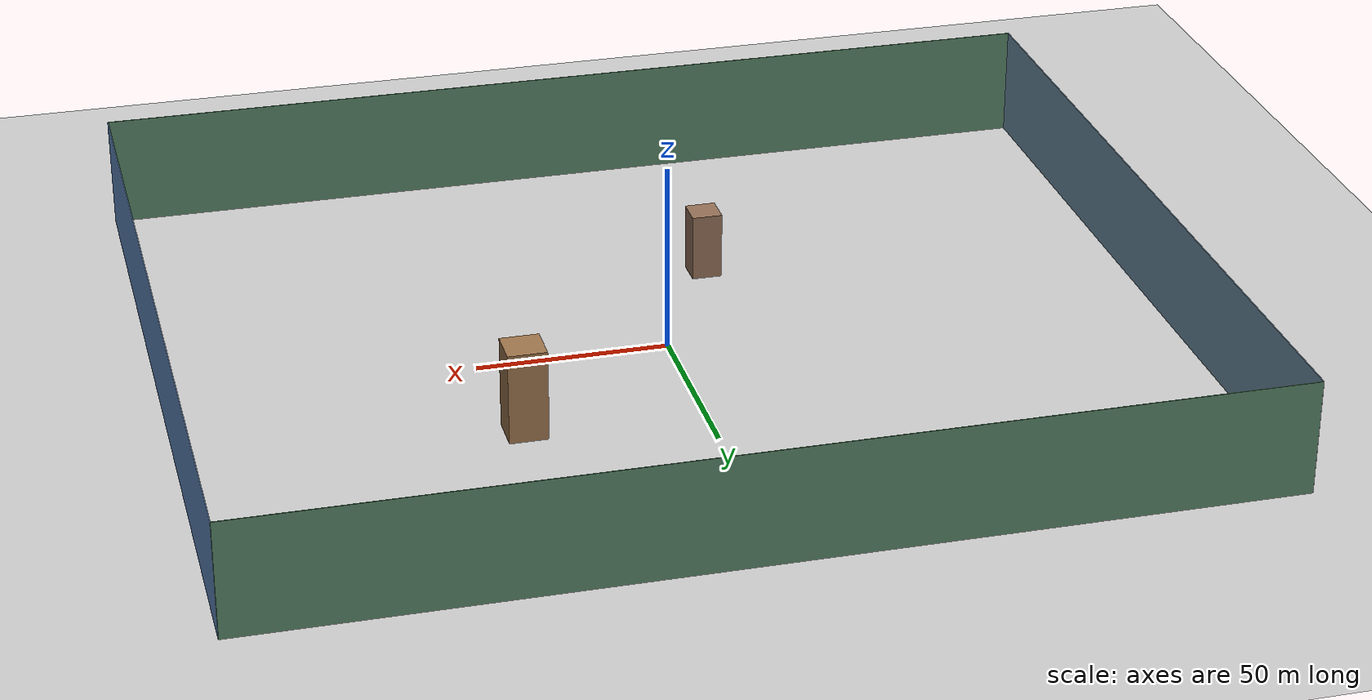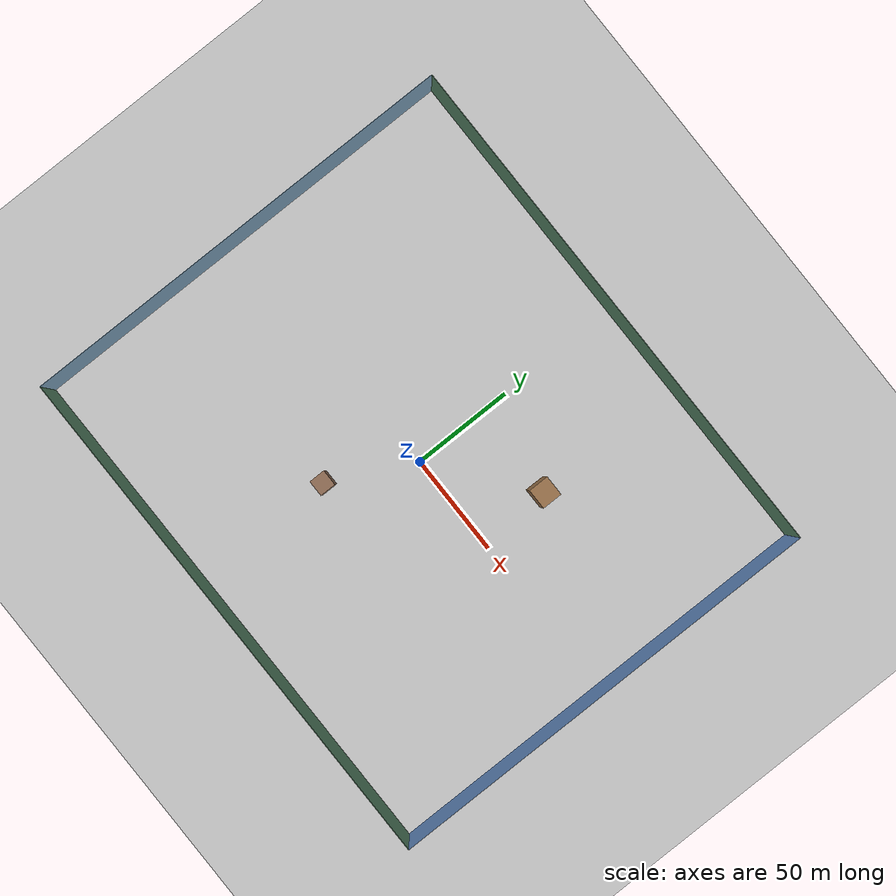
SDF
<sdf version="1.6">
 <world name="acceleration">
  <scene>
   <background>0.68 0.80 0.94 1.0</background>
   <ambient>1.0 1.0 1.0 1.0</ambient>
   <shadows>false</shadows>
   <sky>
    <clouds><speed>6</speed><direction>0.0</direction><humidity>0.3</humidity><mean_size>0.4</mean_size></clouds>
   </sky>
  </scene>
  <spherical_coordinates>
   <heading_deg>180</heading_deg>
   <latitude_deg>55.944400</latitude_deg>
   <longitude_deg>-3.18629</longitude_deg>
  </spherical_coordinates>
  <light name="sun" type="directional">
   <pose>0 0 10 0 -0 0</pose>
   <diffuse>0.8 0.8 0.8 1</diffuse>
   <specular>0.1 0.1 0.1 1</specular>
   <attenuation>
    <range>1000</range>
    <constant>0.9</constant>
    <linear>0.01</linear>
    <quadratic>0.001</quadratic>
   </attenuation>
   <direction>-0.5 0.5 -1</direction>
  </light>
  <include><uri>model://asphalt_plane</uri></include>
  <model name="acceleration_backdrop">
   <static>true</static>
   <link name="visuals">
    <visual name="front_wall">
     <pose>130 0 15 0 0 0</pose>
     <geometry><box><size>0.2 220 30</size></box></geometry>
     <material>
      <ambient>0.40 0.56 0.78 1</ambient>
      <diffuse>0.40 0.56 0.78 1</diffuse>
      <specular>0.01 0.01 0.01 1</specular>
     </material>
     <cast_shadows>false</cast_shadows>
    </visual>
    <visual name="rear_wall">
     <pose>-130 0 15 0 0 0</pose>
     <geometry><box><size>0.2 220 30</size></box></geometry>
     <material>
      <ambient>0.46 0.60 0.70 1</ambient>
      <diffuse>0.46 0.60 0.70 1</diffuse>
      <specular>0.01 0.01 0.01 1</specular>
     </material>
     <cast_shadows>false</cast_shadows>
    </visual>
    <visual name="left_wall">
     <pose>0 110 15 0 0 0</pose>
     <geometry><box><size>260 0.2 30</size></box></geometry>
     <material>
      <ambient>0.34 0.52 0.40 1</ambient>
      <diffuse>0.34 0.52 0.40 1</diffuse>
      <specular>0.01 0.01 0.01 1</specular>
     </material>
     <cast_shadows>false</cast_shadows>
    </visual>
    <visual name="right_wall">
     <pose>0 -110 15 0 0 0</pose>
     <geometry><box><size>260 0.2 30</size></box></geometry>
     <material>
      <ambient>0.34 0.52 0.40 1</ambient>
      <diffuse>0.34 0.52 0.40 1</diffuse>
      <specular>0.01 0.01 0.01 1</specular>
     </material>
     <cast_shadows>false</cast_shadows>
    </visual>
    <visual name="landmark_tower_left">
     <pose>45 35 12 0 0 0</pose>
     <geometry><box><size>10 10 24</size></box></geometry>
     <material>
      <ambient>0.62 0.46 0.30 1</ambient>
      <diffuse>0.62 0.46 0.30 1</diffuse>
      <specular>0.02 0.02 0.02 1</specular>
     </material>
     <cast_shadows>false</cast_shadows>
    </visual>
    <visual name="landmark_tower_right">
     <pose>-20 -40 9 0 0 0</pose>
     <geometry><box><size>8 8 18</size></box></geometry>
     <material>
      <ambient>0.58 0.44 0.34 1</ambient>
      <diffuse>0.58 0.44 0.34 1</diffuse>
      <specular>0.02 0.02 0.02 1</specular>
     </material>
     <cast_shadows>false</cast_shadows>
    </visual>
   </link>
  </model>
 </world>
</sdf>
